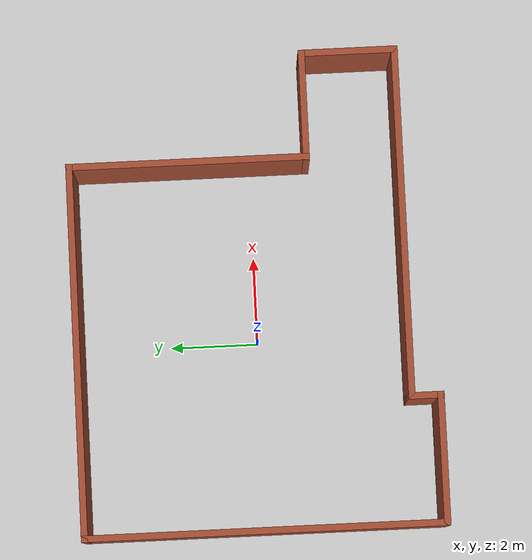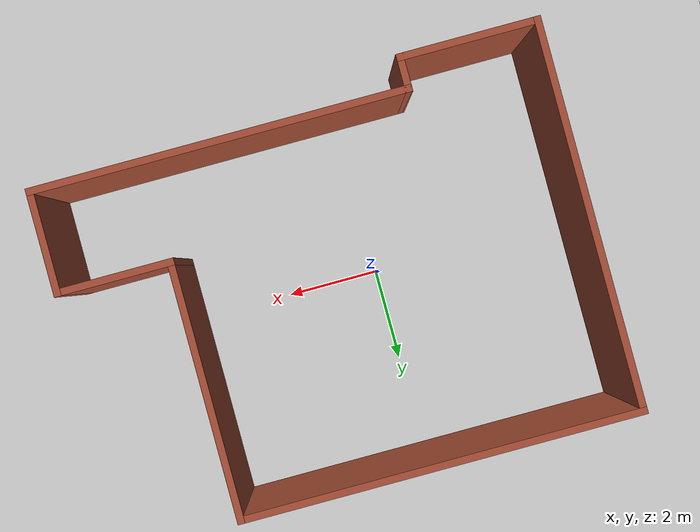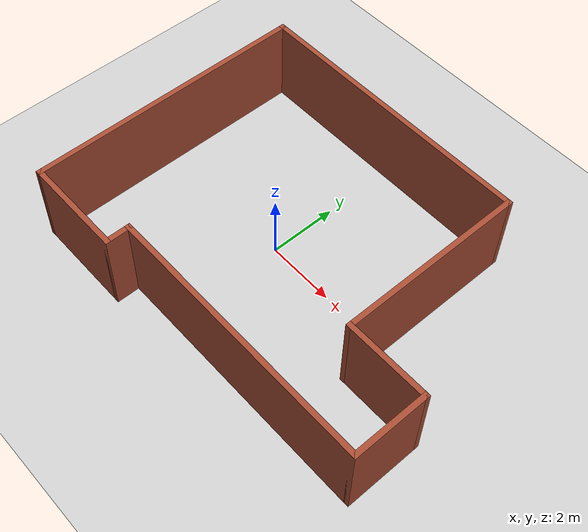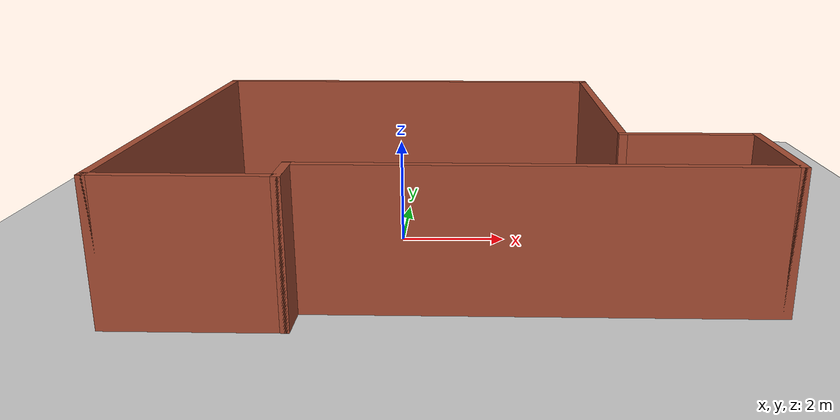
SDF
<sdf version="1.6">
 <world name="default">
  <light name="sun" type="directional">
   <pose>0 0 10 0 -0 0</pose>
   <diffuse>0.8 0.8 0.8 1</diffuse>
   <specular>0.2 0.2 0.2 1</specular>
   <attenuation>
    <range>1000</range>
    <constant>0.9</constant>
    <linear>0.01</linear>
    <quadratic>0.001</quadratic>
   </attenuation>
   <direction>-0.5 0.1 -0.9</direction>
  </light>
  <model name="ground_plane">
   <static>1</static>
   <link name="link">
    <collision name="collision">
     <geometry><plane><normal>0 0 1</normal><size>100 100</size></plane></geometry>
     <surface><friction><ode><mu>100</mu><mu2>50</mu2></ode></friction></surface>
    </collision>
    <visual name="visual">
     <cast_shadows>0</cast_shadows>
     <geometry><plane><normal>0 0 1</normal><size>100 100</size></plane></geometry>
     <material>
      <script><uri>file://media/materials/scripts/gazebo.material</uri><name>Gazebo/Grey</name></script>
     </material>
    </visual>
   </link>
  </model>
  <gravity>0 0 -9.8</gravity>
  <magnetic_field>6e-06 2.3e-05 -4.2e-05</magnetic_field>
  <atmosphere type="adiabatic"/>
  <physics name="default_physics" default="0" type="ode">
   <max_step_size>0.001</max_step_size>
   <real_time_factor>1</real_time_factor>
   <real_time_update_rate>1000</real_time_update_rate>
  </physics>
  <scene><ambient>0.4 0.4 0.4 1</ambient><background>0.7 0.7 0.7 1</background><shadows>1</shadows></scene>
  <audio><device>default</device></audio>
  <spherical_coordinates>
   <surface_model>EARTH_WGS84</surface_model>
   <latitude_deg>0</latitude_deg>
   <longitude_deg>0</longitude_deg>
   <elevation>0</elevation>
   <heading_deg>0</heading_deg>
  </spherical_coordinates>
  <model name="Squared_room">
   <pose>1.01093 0.01196 0 0 -0 0</pose>
   <link name="Wall_0">
    <collision name="Wall_0_Collision">
     <geometry><box><size>8 0.15 2.5</size></box></geometry>
     <pose>0 0 1.25 0 -0 0</pose>
    </collision>
    <visual name="Wall_0_Visual">
     <pose>0 0 1.25 0 -0 0</pose>
     <geometry><box><size>8 0.15 2.5</size></box></geometry>
     <material>
      <script><uri>file://media/materials/scripts/gazebo.material</uri><name>Gazebo/Bricks</name></script>
      <ambient>1 1 1 1</ambient>
     </material>
     <meta><layer>0</layer></meta>
    </visual>
    <pose>1.425 -3.4 0 0 -0 0</pose>
   </link>
   <link name="Wall_3">
    <collision name="Wall_3_Collision">
     <geometry><box><size>2.25 0.15 2.5</size></box></geometry>
     <pose>0 0 1.25 0 -0 0</pose>
    </collision>
    <visual name="Wall_3_Visual">
     <pose>0 0 1.25 0 -0 0</pose>
     <geometry><box><size>2.25 0.15 2.5</size></box></geometry>
     <material>
      <script><uri>file://media/materials/scripts/gazebo.material</uri><name>Gazebo/Bricks</name></script>
      <ambient>1 1 1 1</ambient>
     </material>
     <meta><layer>0</layer></meta>
    </visual>
    <pose>5.35 -2.35 0 0 -0 1.5708</pose>
   </link>
   <link name="Wall_4">
    <collision name="Wall_4_Collision">
     <geometry><box><size>2.5 0.15 2.5</size></box></geometry>
     <pose>0 0 1.25 0 -0 0</pose>
    </collision>
    <visual name="Wall_4_Visual">
     <pose>0 0 1.25 0 -0 0</pose>
     <geometry><box><size>2.5 0.15 2.5</size></box></geometry>
     <material>
      <script><uri>file://media/materials/scripts/gazebo.material</uri><name>Gazebo/Bricks</name></script>
      <ambient>1 1 1 1</ambient>
     </material>
     <meta><layer>0</layer></meta>
    </visual>
    <pose>4.175 -1.3 0 0 -0 3.14159</pose>
   </link>
   <link name="Wall_5">
    <collision name="Wall_5_Collision">
     <geometry><box><size>5.5 0.15 2.5</size></box></geometry>
     <pose>0 0 1.25 0 -0 0</pose>
    </collision>
    <visual name="Wall_5_Visual">
     <pose>0 0 1.25 0 -0 0</pose>
     <geometry><box><size>5.5 0.15 2.5</size></box></geometry>
     <material>
      <script><uri>file://media/materials/scripts/gazebo.material</uri><name>Gazebo/Bricks</name></script>
      <ambient>1 1 1 1</ambient>
     </material>
     <meta><layer>0</layer></meta>
    </visual>
    <pose>3 1.375 0 0 -0 1.5708</pose>
   </link>
   <link name="Wall_6">
    <collision name="Wall_6_Collision">
     <geometry><box><size>8.5 0.15 2.5</size></box></geometry>
     <pose>0 0 1.25 0 -0 0</pose>
    </collision>
    <visual name="Wall_6_Visual">
     <pose>0 0 1.25 0 -0 0</pose>
     <geometry><box><size>8.5 0.15 2.5</size></box></geometry>
     <material>
      <script><uri>file://media/materials/scripts/gazebo.material</uri><name>Gazebo/Bricks</name></script>
      <ambient>1 1 1 1</ambient>
     </material>
     <meta><layer>0</layer></meta>
    </visual>
    <pose>-1.175 4.05 0 0 -0 3.14159</pose>
   </link>
   <link name="Wall_7">
    <collision name="Wall_7_Collision">
     <geometry><box><size>8.25 0.15 2.5</size></box></geometry>
     <pose>0 0 1.25 0 -0 0</pose>
    </collision>
    <visual name="Wall_7_Visual">
     <pose>0 0 1.25 0 -0 0</pose>
     <geometry><box><size>8.25 0.15 2.5</size></box></geometry>
     <material>
      <script><uri>file://media/materials/scripts/gazebo.material</uri><name>Gazebo/Bricks</name></script>
      <ambient>1 1 1 1</ambient>
     </material>
     <meta><layer>0</layer></meta>
    </visual>
    <pose>-5.35 -0 0 0 -0 -1.5708</pose>
   </link>
   <link name="Wall_8">
    <collision name="Wall_8_Collision">
     <geometry><box><size>3 0.15 2.5</size></box></geometry>
     <pose>0 0 1.25 0 -0 0</pose>
    </collision>
    <visual name="Wall_8_Visual">
     <pose>0 0 1.25 0 -0 0</pose>
     <geometry><box><size>3 0.15 2.5</size></box></geometry>
     <material>
      <script><uri>file://media/materials/scripts/gazebo.material</uri><name>Gazebo/Bricks</name></script>
      <ambient>1 1 1 1</ambient>
     </material>
     <meta><layer>0</layer></meta>
    </visual>
    <pose>-3.925 -4.05 0 0 -0 0</pose>
   </link>
   <link name="Wall_9">
    <collision name="Wall_9_Collision">
     <geometry><box><size>0.8 0.15 2.5</size></box></geometry>
     <pose>0 0 1.25 0 -0 0</pose>
    </collision>
    <visual name="Wall_9_Visual">
     <pose>0 0 1.25 0 -0 0</pose>
     <geometry><box><size>0.8 0.15 2.5</size></box></geometry>
     <material>
      <script><uri>file://media/materials/scripts/gazebo.material</uri><name>Gazebo/Bricks</name></script>
      <ambient>1 1 1 1</ambient>
     </material>
     <meta><layer>0</layer></meta>
    </visual>
    <pose>-2.5 -3.725 0 0 -0 1.5708</pose>
   </link>
   <static>1</static>
  </model>
 </world>
</sdf>
